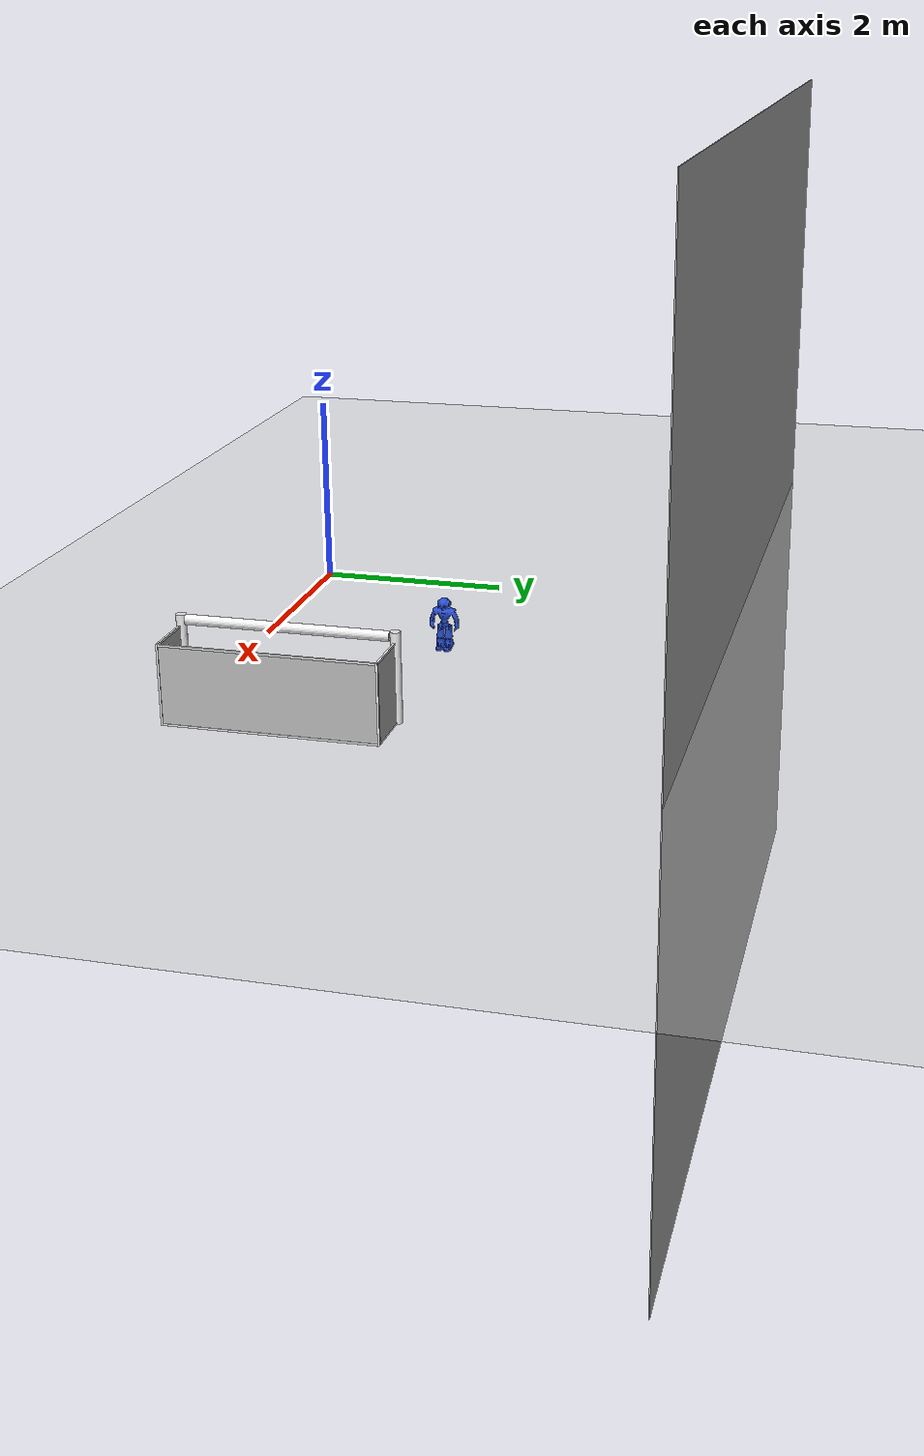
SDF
<sdf version="1.6">
 <world name="default">
  <model name="ground_plane">
   <static>1</static>
   <link name="link">
    <collision name="collision">
     <geometry><plane><normal>0 0 1</normal><size>100 100</size></plane></geometry>
     <surface><friction><ode><mu>100</mu><mu2>50</mu2></ode></friction></surface>
    </collision>
    <visual name="visual">
     <cast_shadows>0</cast_shadows>
     <geometry><plane><normal>0 0 1</normal><size>100 100</size></plane></geometry>
     <material>
      <script><uri>file://media/materials/scripts/gazebo.material</uri><name>Gazebo/Grey</name></script>
     </material>
    </visual>
    <velocity_decay><linear>0</linear><angular>0</angular></velocity_decay>
   </link>
  </model>
  <model name="robocup_3d_goal">
   <static>1</static>
   <link name="left_post">
    <pose>0 1.05 0.45 0 -0 0</pose>
    <collision name="collision">
     <geometry><cylinder><radius>0.05</radius><length>0.9</length></cylinder></geometry>
    </collision>
    <visual name="visual">
     <geometry><cylinder><radius>0.05</radius><length>0.9</length></cylinder></geometry>
     <material>
      <script><uri>file://media/materials/scripts/gazebo.material</uri><name>Gazebo/white</name></script>
     </material>
    </visual>
   </link>
   <link name="left_support_horiz_lower">
    <pose>0.3 1.05 0.01 0 -0 0</pose>
    <collision name="collision"><geometry><box><size>0.5 0.02 0.02</size></box></geometry></collision>
    <visual name="visual">
     <geometry><box><size>0.5 0.02 0.02</size></box></geometry>
     <material>
      <script><uri>file://media/materials/scripts/gazebo.material</uri><name>Gazebo/White</name></script>
     </material>
    </visual>
   </link>
   <link name="left_support_horiz_upper">
    <pose>0.3 1.05 0.79 0 -0 0</pose>
    <collision name="collision"><geometry><box><size>0.5 0.02 0.02</size></box></geometry></collision>
    <visual name="visual">
     <geometry><box><size>0.5 0.02 0.02</size></box></geometry>
     <material>
      <script><uri>file://media/materials/scripts/gazebo.material</uri><name>Gazebo/White</name></script>
     </material>
    </visual>
   </link>
   <link name="left_support_vertical">
    <pose>0.56 1.05 0.4 3.14159 1.57079 3.14159</pose>
    <collision name="collision"><geometry><box><size>0.8 0.02 0.02</size></box></geometry></collision>
    <visual name="visual">
     <geometry><box><size>0.8 0.02 0.02</size></box></geometry>
     <material>
      <script><uri>file://media/materials/scripts/gazebo.material</uri><name>Gazebo/White</name></script>
     </material>
    </visual>
   </link>
   <link name="right_support_horiz_lower">
    <pose>0.3 -1.05 0.01 0 -0 0</pose>
    <collision name="collision"><geometry><box><size>0.5 0.02 0.02</size></box></geometry></collision>
    <visual name="visual">
     <geometry><box><size>0.5 0.02 0.02</size></box></geometry>
     <material>
      <script><uri>file://media/materials/scripts/gazebo.material</uri><name>Gazebo/White</name></script>
     </material>
    </visual>
   </link>
   <link name="right_support_horiz_upper">
    <pose>0.3 -1.05 0.79 0 -0 0</pose>
    <collision name="collision"><geometry><box><size>0.5 0.02 0.02</size></box></geometry></collision>
    <visual name="visual">
     <geometry><box><size>0.5 0.02 0.02</size></box></geometry>
     <material>
      <script><uri>file://media/materials/scripts/gazebo.material</uri><name>Gazebo/White</name></script>
     </material>
    </visual>
   </link>
   <link name="right_support_vertical">
    <pose>0.56 -1.05 0.4 3.14159 1.57079 3.14159</pose>
    <collision name="collision"><geometry><box><size>0.8 0.02 0.02</size></box></geometry></collision>
    <visual name="visual">
     <geometry><box><size>0.8 0.02 0.02</size></box></geometry>
     <material>
      <script><uri>file://media/materials/scripts/gazebo.material</uri><name>Gazebo/White</name></script>
     </material>
    </visual>
   </link>
   <link name="center_support_horiz_lower">
    <pose>0.56 0 0.01 3.14159 1.57079 3.14159</pose>
    <collision name="collision"><geometry><box><size>0.02 2.08 0.02</size></box></geometry></collision>
    <visual name="visual">
     <geometry><box><size>0.02 2.08 0.02</size></box></geometry>
     <material>
      <script><uri>file://media/materials/scripts/gazebo.material</uri><name>Gazebo/White</name></script>
     </material>
    </visual>
   </link>
   <link name="center_support_horiz_upper">
    <pose>0.56 0 0.79 3.14159 1.57079 3.14159</pose>
    <collision name="collision"><geometry><box><size>0.02 2.08 0.02</size></box></geometry></collision>
    <visual name="visual">
     <geometry><box><size>0.02 2.08 0.02</size></box></geometry>
     <material>
      <script><uri>file://media/materials/scripts/gazebo.material</uri><name>Gazebo/White</name></script>
     </material>
    </visual>
   </link>
   <link name="right_post">
    <pose>0 -1.05 0.45 0 -0 0</pose>
    <collision name="collision">
     <geometry><cylinder><radius>0.05</radius><length>0.9</length></cylinder></geometry>
    </collision>
    <visual name="visual">
     <geometry><cylinder><radius>0.05</radius><length>0.9</length></cylinder></geometry>
     <material>
      <script><uri>file://media/materials/scripts/gazebo.material</uri><name>Gazebo/white</name></script>
     </material>
    </visual>
   </link>
   <link name="crossbar">
    <pose>0 0 0.85 1.57 1.57 0</pose>
    <collision name="collision">
     <geometry><cylinder><radius>0.05</radius><length>2</length></cylinder></geometry>
    </collision>
    <visual name="visual">
     <geometry><cylinder><radius>0.05</radius><length>2</length></cylinder></geometry>
     <material>
      <script><uri>file://media/materials/scripts/gazebo.material</uri><name>Gazebo/white</name></script>
     </material>
    </visual>
   </link>
   <link name="center_net">
    <pose>0.56 0 0.4 0 -0 0</pose>
    <collision name="collision"><geometry><box><size>0.01 2.1 0.8</size></box></geometry></collision>
    <visual name="visual">
     <geometry><box><size>0.01 2.1 0.8</size></box></geometry>
     <material>
      <script>
       <uri>model://robocup09_spl_field/materials/scripts/</uri>
       <uri>model://robocup09_spl_field/materials/textures/</uri>
       <name>RoboCup/Net</name>
      </script>
     </material>
    </visual>
   </link>
   <link name="left_net">
    <pose>0.3 1.05 0.4 0 -0 0</pose>
    <collision name="collision"><geometry><box><size>0.5 0.01 0.76</size></box></geometry></collision>
    <visual name="visual">
     <geometry><box><size>0.5 0.01 0.76</size></box></geometry>
     <material>
      <script>
       <uri>model://robocup09_spl_field/materials/scripts/</uri>
       <uri>model://robocup09_spl_field/materials/textures/</uri>
       <name>RoboCup/Net</name>
      </script>
     </material>
    </visual>
   </link>
   <link name="right_net">
    <pose>0.3 -1.05 0.4 0 -0 0</pose>
    <collision name="collision"><geometry><box><size>0.5 0.01 0.76</size></box></geometry></collision>
    <visual name="visual">
     <geometry><box><size>0.5 0.01 0.76</size></box></geometry>
     <material>
      <script>
       <uri>model://robocup09_spl_field/materials/scripts/</uri>
       <uri>model://robocup09_spl_field/materials/textures/</uri>
       <name>RoboCup/Net</name>
      </script>
     </material>
    </visual>
   </link>
   <pose>4 1 0 0 -0 0</pose>
  </model>
  <model name="nao18">
   <model name="nao_body">
    <link name="link_0">
     <inertial>
      <mass>15</mass>
      <inertia><ixx>0</ixx><ixy>0</ixy><ixz>0</ixz><iyy>0</iyy><iyz>0</iyz><izz>0</izz></inertia>
     </inertial>
     <visual name="visual">
      <geometry>
       <mesh><uri>/usr/share/nao_body_mesh/nao_robot.stl</uri><scale>0.0037 0.0037 0.0037</scale></mesh>
      </geometry>
      <material>
       <lighting>1</lighting>
       <script><uri>file://media/materials/scripts/gazebo.material</uri><name>Gazebo/Blue</name></script>
      </material>
     </visual>
     <collision name="collision">
      <pose>-0.025 -0.1 0.28 0 -0 0</pose>
      <geometry><box><size>0.35 0.22 0.57</size></box></geometry>
      <surface>
       <friction>
        <ode><mu>2</mu><mu2>2</mu2><fdir1>0 0 0</fdir1><slip1>0</slip1><slip2>0</slip2></ode>
        <torsional>
         <coefficient>1</coefficient>
         <patch_radius>0</patch_radius>
         <surface_radius>0</surface_radius>
         <use_patch_radius>1</use_patch_radius>
         <ode><slip>0</slip></ode>
        </torsional>
       </friction>
       <bounce><restitution_coefficient>0</restitution_coefficient><threshold>1e+06</threshold></bounce>
       <contact>
        <collide_without_contact>0</collide_without_contact>
        <collide_without_contact_bitmask>1</collide_without_contact_bitmask>
        <collide_bitmask>1</collide_bitmask>
        <ode>
         <soft_cfm>0</soft_cfm>
         <soft_erp>0.2</soft_erp>
         <kp>1e+13</kp>
         <kd>1</kd>
         <max_vel>0.01</max_vel>
         <min_depth>0</min_depth>
        </ode>
        <bullet>
         <split_impulse>1</split_impulse>
         <split_impulse_penetration_threshold>-0.01</split_impulse_penetration_threshold>
         <soft_cfm>0</soft_cfm>
         <soft_erp>0.2</soft_erp>
         <kp>1e+13</kp>
         <kd>1</kd>
        </bullet>
       </contact>
      </surface>
     </collision>
    </link>
    <static>0</static>
    <pose>-0 -1e-06 0 0 -0 1.52144</pose>
   </model>
   <static>0</static>
   <pose>4 1 0.0345 0 -0 0</pose>
  </model>
  <model name="nao17">
   <model name="nao_body">
    <link name="link_0">
     <inertial>
      <mass>15</mass>
      <inertia><ixx>0</ixx><ixy>0</ixy><ixz>0</ixz><iyy>0</iyy><iyz>0</iyz><izz>0</izz></inertia>
     </inertial>
     <visual name="visual">
      <geometry>
       <mesh><uri>/usr/share/nao_body_mesh/nao_robot.stl</uri><scale>0.0037 0.0037 0.0037</scale></mesh>
      </geometry>
      <material>
       <lighting>1</lighting>
       <script><uri>file://media/materials/scripts/gazebo.material</uri><name>Gazebo/Blue</name></script>
      </material>
     </visual>
     <collision name="collision">
      <pose>-0.025 -0.1 0.28 0 -0 0</pose>
      <geometry><box><size>0.35 0.22 0.57</size></box></geometry>
      <surface>
       <friction>
        <ode><mu>2</mu><mu2>2</mu2><fdir1>0 0 0</fdir1><slip1>0</slip1><slip2>0</slip2></ode>
        <torsional>
         <coefficient>1</coefficient>
         <patch_radius>0</patch_radius>
         <surface_radius>0</surface_radius>
         <use_patch_radius>1</use_patch_radius>
         <ode><slip>0</slip></ode>
        </torsional>
       </friction>
       <bounce><restitution_coefficient>0</restitution_coefficient><threshold>1e+06</threshold></bounce>
       <contact>
        <collide_without_contact>0</collide_without_contact>
        <collide_without_contact_bitmask>1</collide_without_contact_bitmask>
        <collide_bitmask>1</collide_bitmask>
        <ode>
         <soft_cfm>0</soft_cfm>
         <soft_erp>0.2</soft_erp>
         <kp>1e+13</kp>
         <kd>1</kd>
         <max_vel>0.01</max_vel>
         <min_depth>0</min_depth>
        </ode>
        <bullet>
         <split_impulse>1</split_impulse>
         <split_impulse_penetration_threshold>-0.01</split_impulse_penetration_threshold>
         <soft_cfm>0</soft_cfm>
         <soft_erp>0.2</soft_erp>
         <kp>1e+13</kp>
         <kd>1</kd>
        </bullet>
       </contact>
      </surface>
     </collision>
    </link>
    <static>0</static>
    <pose>-0 -1e-06 0 0 -0 1.52144</pose>
   </model>
   <static>0</static>
   <pose>2 2 0.0345 0 -0 0</pose>
  </model>
  <model name="my_ground_plane_1">
   <static>1</static>
   <link name="link">
    <pose>0 0 0 1.57 -0 0</pose>
    <collision name="collision">
     <geometry><plane><size>10.5 10.5</size><normal>0 0 1</normal></plane></geometry>
     <surface><friction><ode><mu>100</mu><mu2>50</mu2></ode></friction></surface>
    </collision>
    <visual name="visual">
     <cast_shadows>0</cast_shadows>
     <geometry><plane><size>10.5 10.5</size><normal>0 0 1</normal></plane></geometry>
     <material>
      <script>
       <uri>model://my_ground_plane/materials/scripts</uri>
       <uri>model://my_ground_plane/materials/textures/</uri>
       <name>MyGroundPlane/Image</name>
      </script>
     </material>
    </visual>
   </link>
   <pose>0 4.75 0 0 -0 0</pose>
  </model>
 </world>
</sdf>
